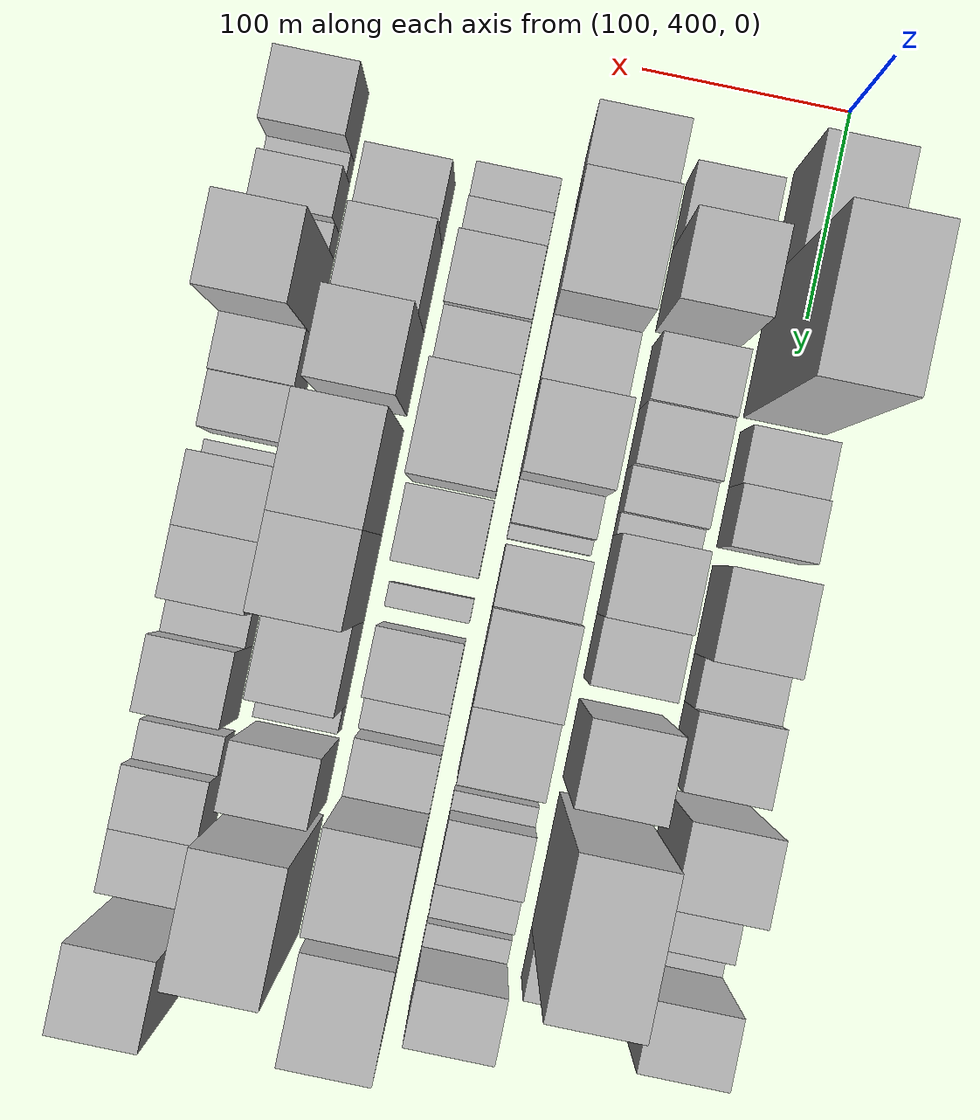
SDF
<sdf version="1.6">
 <world name="default">
  <model name="building_33">
   <static>1</static>
   <pose>100.0000 458.7951 0 0.000000 0.000000 0.000000</pose>
   <link name="link">
    <pose>0 0 45.00 0 0 0</pose>
    <collision name="collision"><geometry><box><size>40.0000 51.8007 90.0000</size></box></geometry></collision>
    <visual name="visual">
     <cast_shadows>0</cast_shadows>
     <geometry><box><size>40.0000 51.8007 90.0000</size></box></geometry>
     <material>
      <script>
       <uri>model://HANNAS_wall/materials/scripts</uri>
       <uri>model://HANNAS_wall/materials/textures</uri>
       <name>vrc/HANNAS_wall</name>
      </script>
     </material>
    </visual>
   </link>
  </model>
  <model name="building_34">
   <static>1</static>
   <pose>100.0000 518.2895 0 0.000000 0.000000 0.000000</pose>
   <link name="link">
    <pose>0 0 99.00 0 0 0</pose>
    <collision name="collision"><geometry><box><size>40.0000 67.1880 198.0000</size></box></geometry></collision>
    <visual name="visual">
     <cast_shadows>0</cast_shadows>
     <geometry><box><size>40.0000 67.1880 198.0000</size></box></geometry>
     <material>
      <script>
       <uri>model://HANNAS_wall/materials/scripts</uri>
       <uri>model://HANNAS_wall/materials/textures</uri>
       <name>vrc/HANNAS_wall</name>
      </script>
     </material>
    </visual>
   </link>
  </model>
  <model name="building_35">
   <static>1</static>
   <pose>100.0000 572.3179 0 0.000000 0.000000 0.000000</pose>
   <link name="link">
    <pose>0 0 24.00 0 0 0</pose>
    <collision name="collision"><geometry><box><size>40.0000 26.8688 48.0000</size></box></geometry></collision>
    <visual name="visual">
     <cast_shadows>0</cast_shadows>
     <geometry><box><size>40.0000 26.8688 48.0000</size></box></geometry>
     <material>
      <script>
       <uri>model://HANNAS_wall/materials/scripts</uri>
       <uri>model://HANNAS_wall/materials/textures</uri>
       <name>vrc/HANNAS_wall</name>
      </script>
     </material>
    </visual>
   </link>
  </model>
  <model name="building_36">
   <static>1</static>
   <pose>100.0000 600.1431 0 0.000000 0.000000 0.000000</pose>
   <link name="link">
    <pose>0 0 27.00 0 0 0</pose>
    <collision name="collision"><geometry><box><size>40.0000 28.7815 54.0000</size></box></geometry></collision>
    <visual name="visual">
     <cast_shadows>0</cast_shadows>
     <geometry><box><size>40.0000 28.7815 54.0000</size></box></geometry>
     <material>
      <script>
       <uri>model://HANNAS_wall/materials/scripts</uri>
       <uri>model://HANNAS_wall/materials/textures</uri>
       <name>vrc/HANNAS_wall</name>
      </script>
     </material>
    </visual>
   </link>
  </model>
  <model name="building_37">
   <static>1</static>
   <pose>100.0000 644.5969 0 0.000000 0.000000 0.000000</pose>
   <link name="link">
    <pose>0 0 37.50 0 0 0</pose>
    <collision name="collision"><geometry><box><size>40.0000 42.1262 75.0000</size></box></geometry></collision>
    <visual name="visual">
     <cast_shadows>0</cast_shadows>
     <geometry><box><size>40.0000 42.1262 75.0000</size></box></geometry>
     <material>
      <script>
       <uri>model://HANNAS_wall/materials/scripts</uri>
       <uri>model://HANNAS_wall/materials/textures</uri>
       <name>vrc/HANNAS_wall</name>
      </script>
     </material>
    </visual>
   </link>
  </model>
  <model name="building_38">
   <static>1</static>
   <pose>100.0000 677.2356 0 0.000000 0.000000 0.000000</pose>
   <link name="link">
    <pose>0 0 22.50 0 0 0</pose>
    <collision name="collision"><geometry><box><size>40.0000 23.1513 45.0000</size></box></geometry></collision>
    <visual name="visual">
     <cast_shadows>0</cast_shadows>
     <geometry><box><size>40.0000 23.1513 45.0000</size></box></geometry>
     <material>
      <script>
       <uri>model://HANNAS_wall/materials/scripts</uri>
       <uri>model://HANNAS_wall/materials/textures</uri>
       <name>vrc/HANNAS_wall</name>
      </script>
     </material>
    </visual>
   </link>
  </model>
  <model name="building_39">
   <static>1</static>
   <pose>100.0000 706.8171 0 0.000000 0.000000 0.000000</pose>
   <link name="link">
    <pose>0 0 31.50 0 0 0</pose>
    <collision name="collision"><geometry><box><size>40.0000 36.0117 63.0000</size></box></geometry></collision>
    <visual name="visual">
     <cast_shadows>0</cast_shadows>
     <geometry><box><size>40.0000 36.0117 63.0000</size></box></geometry>
     <material>
      <script>
       <uri>model://HANNAS_wall/materials/scripts</uri>
       <uri>model://HANNAS_wall/materials/textures</uri>
       <name>vrc/HANNAS_wall</name>
      </script>
     </material>
    </visual>
   </link>
  </model>
  <model name="building_40">
   <static>1</static>
   <pose>100.0000 749.5616 0 0.000000 0.000000 0.000000</pose>
   <link name="link">
    <pose>0 0 57.00 0 0 0</pose>
    <collision name="collision"><geometry><box><size>40.0000 37.4773 114.0000</size></box></geometry></collision>
    <visual name="visual">
     <cast_shadows>0</cast_shadows>
     <geometry><box><size>40.0000 37.4773 114.0000</size></box></geometry>
     <material>
      <script>
       <uri>model://HANNAS_wall/materials/scripts</uri>
       <uri>model://HANNAS_wall/materials/textures</uri>
       <name>vrc/HANNAS_wall</name>
      </script>
     </material>
    </visual>
   </link>
  </model>
  <model name="building_41">
   <static>1</static>
   <pose>100.0000 782.4938 0 0.000000 0.000000 0.000000</pose>
   <link name="link">
    <pose>0 0 25.50 0 0 0</pose>
    <collision name="collision"><geometry><box><size>40.0000 28.3869 51.0000</size></box></geometry></collision>
    <visual name="visual">
     <cast_shadows>0</cast_shadows>
     <geometry><box><size>40.0000 28.3869 51.0000</size></box></geometry>
     <material>
      <script>
       <uri>model://HANNAS_wall/materials/scripts</uri>
       <uri>model://HANNAS_wall/materials/textures</uri>
       <name>vrc/HANNAS_wall</name>
      </script>
     </material>
    </visual>
   </link>
  </model>
  <model name="building_42">
   <static>1</static>
   <pose>100.0000 802.5357 0 0.000000 0.000000 0.000000</pose>
   <link name="link">
    <pose>0 0 12.00 0 0 0</pose>
    <collision name="collision"><geometry><box><size>40.0000 11.6971 24.0000</size></box></geometry></collision>
    <visual name="visual">
     <cast_shadows>0</cast_shadows>
     <geometry><box><size>40.0000 11.6971 24.0000</size></box></geometry>
     <material>
      <script>
       <uri>model://HANNAS_wall/materials/scripts</uri>
       <uri>model://HANNAS_wall/materials/textures</uri>
       <name>vrc/HANNAS_wall</name>
      </script>
     </material>
    </visual>
   </link>
  </model>
  <model name="building_43">
   <static>1</static>
   <pose>100.0000 824.1265 0 0.000000 0.000000 0.000000</pose>
   <link name="link">
    <pose>0 0 51.00 0 0 0</pose>
    <collision name="collision"><geometry><box><size>40.0000 31.4844 102.0000</size></box></geometry></collision>
    <visual name="visual">
     <cast_shadows>0</cast_shadows>
     <geometry><box><size>40.0000 31.4844 102.0000</size></box></geometry>
     <material>
      <script>
       <uri>model://HANNAS_wall/materials/scripts</uri>
       <uri>model://HANNAS_wall/materials/textures</uri>
       <name>vrc/HANNAS_wall</name>
      </script>
     </material>
    </visual>
   </link>
  </model>
  <model name="building_79">
   <static>1</static>
   <pose>149.0000 465.1339 0 0.000000 0.000000 0.000000</pose>
   <link name="link">
    <pose>0 0 27.00 0 0 0</pose>
    <collision name="collision"><geometry><box><size>40.0000 32.3079 54.0000</size></box></geometry></collision>
    <visual name="visual">
     <cast_shadows>0</cast_shadows>
     <geometry><box><size>40.0000 32.3079 54.0000</size></box></geometry>
     <material>
      <script>
       <uri>model://HANNAS_wall/materials/scripts</uri>
       <uri>model://HANNAS_wall/materials/textures</uri>
       <name>vrc/HANNAS_wall</name>
      </script>
     </material>
    </visual>
   </link>
  </model>
  <model name="building_80">
   <static>1</static>
   <pose>149.0000 500.9837 0 0.000000 0.000000 0.000000</pose>
   <link name="link">
    <pose>0 0 57.00 0 0 0</pose>
    <collision name="collision"><geometry><box><size>40.0000 39.3915 114.0000</size></box></geometry></collision>
    <visual name="visual">
     <cast_shadows>0</cast_shadows>
     <geometry><box><size>40.0000 39.3915 114.0000</size></box></geometry>
     <material>
      <script>
       <uri>model://HANNAS_wall/materials/scripts</uri>
       <uri>model://HANNAS_wall/materials/textures</uri>
       <name>vrc/HANNAS_wall</name>
      </script>
     </material>
    </visual>
   </link>
  </model>
  <model name="building_81">
   <static>1</static>
   <pose>149.0000 543.0132 0 0.000000 0.000000 0.000000</pose>
   <link name="link">
    <pose>0 0 30.00 0 0 0</pose>
    <collision name="collision"><geometry><box><size>40.0000 30.6675 60.0000</size></box></geometry></collision>
    <visual name="visual">
     <cast_shadows>0</cast_shadows>
     <geometry><box><size>40.0000 30.6675 60.0000</size></box></geometry>
     <material>
      <script>
       <uri>model://HANNAS_wall/materials/scripts</uri>
       <uri>model://HANNAS_wall/materials/textures</uri>
       <name>vrc/HANNAS_wall</name>
      </script>
     </material>
    </visual>
   </link>
  </model>
  <model name="building_82">
   <static>1</static>
   <pose>149.0000 572.6626 0 0.000000 0.000000 0.000000</pose>
   <link name="link">
    <pose>0 0 27.00 0 0 0</pose>
    <collision name="collision"><geometry><box><size>40.0000 28.6314 54.0000</size></box></geometry></collision>
    <visual name="visual">
     <cast_shadows>0</cast_shadows>
     <geometry><box><size>40.0000 28.6314 54.0000</size></box></geometry>
     <material>
      <script>
       <uri>model://HANNAS_wall/materials/scripts</uri>
       <uri>model://HANNAS_wall/materials/textures</uri>
       <name>vrc/HANNAS_wall</name>
      </script>
     </material>
    </visual>
   </link>
  </model>
  <model name="building_83">
   <static>1</static>
   <pose>149.0000 597.7232 0 0.000000 0.000000 0.000000</pose>
   <link name="link">
    <pose>0 0 19.50 0 0 0</pose>
    <collision name="collision"><geometry><box><size>40.0000 21.4896 39.0000</size></box></geometry></collision>
    <visual name="visual">
     <cast_shadows>0</cast_shadows>
     <geometry><box><size>40.0000 21.4896 39.0000</size></box></geometry>
     <material>
      <script>
       <uri>model://HANNAS_wall/materials/scripts</uri>
       <uri>model://HANNAS_wall/materials/textures</uri>
       <name>vrc/HANNAS_wall</name>
      </script>
     </material>
    </visual>
   </link>
  </model>
  <model name="building_84">
   <static>1</static>
   <pose>149.0000 613.7117 0 0.000000 0.000000 0.000000</pose>
   <link name="link">
    <pose>0 0 12.00 0 0 0</pose>
    <collision name="collision"><geometry><box><size>40.0000 10.4873 24.0000</size></box></geometry></collision>
    <visual name="visual">
     <cast_shadows>0</cast_shadows>
     <geometry><box><size>40.0000 10.4873 24.0000</size></box></geometry>
     <material>
      <script>
       <uri>model://HANNAS_wall/materials/scripts</uri>
       <uri>model://HANNAS_wall/materials/textures</uri>
       <name>vrc/HANNAS_wall</name>
      </script>
     </material>
    </visual>
   </link>
  </model>
  <model name="building_85">
   <static>1</static>
   <pose>149.0000 637.7912 0 0.000000 0.000000 0.000000</pose>
   <link name="link">
    <pose>0 0 33.00 0 0 0</pose>
    <collision name="collision"><geometry><box><size>40.0000 37.6717 66.0000</size></box></geometry></collision>
    <visual name="visual">
     <cast_shadows>0</cast_shadows>
     <geometry><box><size>40.0000 37.6717 66.0000</size></box></geometry>
     <material>
      <script>
       <uri>model://HANNAS_wall/materials/scripts</uri>
       <uri>model://HANNAS_wall/materials/textures</uri>
       <name>vrc/HANNAS_wall</name>
      </script>
     </material>
    </visual>
   </link>
  </model>
  <model name="building_86">
   <static>1</static>
   <pose>149.0000 672.0620 0 0.000000 0.000000 0.000000</pose>
   <link name="link">
    <pose>0 0 28.50 0 0 0</pose>
    <collision name="collision"><geometry><box><size>40.0000 30.8700 57.0000</size></box></geometry></collision>
    <visual name="visual">
     <cast_shadows>0</cast_shadows>
     <geometry><box><size>40.0000 30.8700 57.0000</size></box></geometry>
     <material>
      <script>
       <uri>model://HANNAS_wall/materials/scripts</uri>
       <uri>model://HANNAS_wall/materials/textures</uri>
       <name>vrc/HANNAS_wall</name>
      </script>
     </material>
    </visual>
   </link>
  </model>
  <model name="building_87">
   <static>1</static>
   <pose>149.0000 716.5715 0 0.000000 0.000000 0.000000</pose>
   <link name="link">
    <pose>0 0 57.00 0 0 0</pose>
    <collision name="collision"><geometry><box><size>40.0000 38.1490 114.0000</size></box></geometry></collision>
    <visual name="visual">
     <cast_shadows>0</cast_shadows>
     <geometry><box><size>40.0000 38.1490 114.0000</size></box></geometry>
     <material>
      <script>
       <uri>model://HANNAS_wall/materials/scripts</uri>
       <uri>model://HANNAS_wall/materials/textures</uri>
       <name>vrc/HANNAS_wall</name>
      </script>
     </material>
    </visual>
   </link>
  </model>
  <model name="building_88">
   <static>1</static>
   <pose>149.0000 775.2570 0 0.000000 0.000000 0.000000</pose>
   <link name="link">
    <pose>0 0 93.00 0 0 0</pose>
    <collision name="collision"><geometry><box><size>40.0000 65.2220 186.0000</size></box></geometry></collision>
    <visual name="visual">
     <cast_shadows>0</cast_shadows>
     <geometry><box><size>40.0000 65.2220 186.0000</size></box></geometry>
     <material>
      <script>
       <uri>model://HANNAS_wall/materials/scripts</uri>
       <uri>model://HANNAS_wall/materials/textures</uri>
       <name>vrc/HANNAS_wall</name>
      </script>
     </material>
    </visual>
   </link>
  </model>
  <model name="building_89">
   <static>1</static>
   <pose>149.0000 819.9639 0 0.000000 0.000000 0.000000</pose>
   <link name="link">
    <pose>0 0 24.00 0 0 0</pose>
    <collision name="collision"><geometry><box><size>40.0000 24.1918 48.0000</size></box></geometry></collision>
    <visual name="visual">
     <cast_shadows>0</cast_shadows>
     <geometry><box><size>40.0000 24.1918 48.0000</size></box></geometry>
     <material>
      <script>
       <uri>model://HANNAS_wall/materials/scripts</uri>
       <uri>model://HANNAS_wall/materials/textures</uri>
       <name>vrc/HANNAS_wall</name>
      </script>
     </material>
    </visual>
   </link>
  </model>
  <model name="building_126">
   <static>1</static>
   <pose>198.0000 461.3686 0 0.000000 0.000000 0.000000</pose>
   <link name="link">
    <pose>0 0 52.50 0 0 0</pose>
    <collision name="collision"><geometry><box><size>40.0000 33.6509 105.0000</size></box></geometry></collision>
    <visual name="visual">
     <cast_shadows>0</cast_shadows>
     <geometry><box><size>40.0000 33.6509 105.0000</size></box></geometry>
     <material>
      <script>
       <uri>model://HANNAS_wall/materials/scripts</uri>
       <uri>model://HANNAS_wall/materials/textures</uri>
       <name>vrc/HANNAS_wall</name>
      </script>
     </material>
    </visual>
   </link>
  </model>
  <model name="building_127">
   <static>1</static>
   <pose>198.0000 504.0935 0 0.000000 0.000000 0.000000</pose>
   <link name="link">
    <pose>0 0 66.00 0 0 0</pose>
    <collision name="collision"><geometry><box><size>40.0000 51.7989 132.0000</size></box></geometry></collision>
    <visual name="visual">
     <cast_shadows>0</cast_shadows>
     <geometry><box><size>40.0000 51.7989 132.0000</size></box></geometry>
     <material>
      <script>
       <uri>model://HANNAS_wall/materials/scripts</uri>
       <uri>model://HANNAS_wall/materials/textures</uri>
       <name>vrc/HANNAS_wall</name>
      </script>
     </material>
    </visual>
   </link>
  </model>
  <model name="building_128">
   <static>1</static>
   <pose>198.0000 547.0537 0 0.000000 0.000000 0.000000</pose>
   <link name="link">
    <pose>0 0 28.50 0 0 0</pose>
    <collision name="collision"><geometry><box><size>40.0000 34.1214 57.0000</size></box></geometry></collision>
    <visual name="visual">
     <cast_shadows>0</cast_shadows>
     <geometry><box><size>40.0000 34.1214 57.0000</size></box></geometry>
     <material>
      <script>
       <uri>model://HANNAS_wall/materials/scripts</uri>
       <uri>model://HANNAS_wall/materials/textures</uri>
       <name>vrc/HANNAS_wall</name>
      </script>
     </material>
    </visual>
   </link>
  </model>
  <model name="building_129">
   <static>1</static>
   <pose>198.0000 583.8266 0 0.000000 0.000000 0.000000</pose>
   <link name="link">
    <pose>0 0 54.00 0 0 0</pose>
    <collision name="collision"><geometry><box><size>40.0000 39.4245 108.0000</size></box></geometry></collision>
    <visual name="visual">
     <cast_shadows>0</cast_shadows>
     <geometry><box><size>40.0000 39.4245 108.0000</size></box></geometry>
     <material>
      <script>
       <uri>model://HANNAS_wall/materials/scripts</uri>
       <uri>model://HANNAS_wall/materials/textures</uri>
       <name>vrc/HANNAS_wall</name>
      </script>
     </material>
    </visual>
   </link>
  </model>
  <model name="building_130">
   <static>1</static>
   <pose>198.0000 613.5827 0 0.000000 0.000000 0.000000</pose>
   <link name="link">
    <pose>0 0 18.00 0 0 0</pose>
    <collision name="collision"><geometry><box><size>40.0000 20.0877 36.0000</size></box></geometry></collision>
    <visual name="visual">
     <cast_shadows>0</cast_shadows>
     <geometry><box><size>40.0000 20.0877 36.0000</size></box></geometry>
     <material>
      <script>
       <uri>model://HANNAS_wall/materials/scripts</uri>
       <uri>model://HANNAS_wall/materials/textures</uri>
       <name>vrc/HANNAS_wall</name>
      </script>
     </material>
    </visual>
   </link>
  </model>
  <model name="building_131">
   <static>1</static>
   <pose>198.0000 627.2752 0 0.000000 0.000000 0.000000</pose>
   <link name="link">
    <pose>0 0 7.50 0 0 0</pose>
    <collision name="collision"><geometry><box><size>40.0000 7.2973 15.0000</size></box></geometry></collision>
    <visual name="visual">
     <cast_shadows>0</cast_shadows>
     <geometry><box><size>40.0000 7.2973 15.0000</size></box></geometry>
     <material>
      <script>
       <uri>model://HANNAS_wall/materials/scripts</uri>
       <uri>model://HANNAS_wall/materials/textures</uri>
       <name>vrc/HANNAS_wall</name>
      </script>
     </material>
    </visual>
   </link>
  </model>
  <model name="building_132">
   <static>1</static>
   <pose>198.0000 648.0827 0 0.000000 0.000000 0.000000</pose>
   <link name="link">
    <pose>0 0 27.00 0 0 0</pose>
    <collision name="collision"><geometry><box><size>40.0000 28.3178 54.0000</size></box></geometry></collision>
    <visual name="visual">
     <cast_shadows>0</cast_shadows>
     <geometry><box><size>40.0000 28.3178 54.0000</size></box></geometry>
     <material>
      <script>
       <uri>model://HANNAS_wall/materials/scripts</uri>
       <uri>model://HANNAS_wall/materials/textures</uri>
       <name>vrc/HANNAS_wall</name>
      </script>
     </material>
    </visual>
   </link>
  </model>
  <model name="building_133">
   <static>1</static>
   <pose>198.0000 683.8855 0 0.000000 0.000000 0.000000</pose>
   <link name="link">
    <pose>0 0 40.50 0 0 0</pose>
    <collision name="collision"><geometry><box><size>40.0000 43.2876 81.0000</size></box></geometry></collision>
    <visual name="visual">
     <cast_shadows>0</cast_shadows>
     <geometry><box><size>40.0000 43.2876 81.0000</size></box></geometry>
     <material>
      <script>
       <uri>model://HANNAS_wall/materials/scripts</uri>
       <uri>model://HANNAS_wall/materials/textures</uri>
       <name>vrc/HANNAS_wall</name>
      </script>
     </material>
    </visual>
   </link>
  </model>
  <model name="building_134">
   <static>1</static>
   <pose>198.0000 723.5889 0 0.000000 0.000000 0.000000</pose>
   <link name="link">
    <pose>0 0 33.00 0 0 0</pose>
    <collision name="collision"><geometry><box><size>40.0000 36.1193 66.0000</size></box></geometry></collision>
    <visual name="visual">
     <cast_shadows>0</cast_shadows>
     <geometry><box><size>40.0000 36.1193 66.0000</size></box></geometry>
     <material>
      <script>
       <uri>model://HANNAS_wall/materials/scripts</uri>
       <uri>model://HANNAS_wall/materials/textures</uri>
       <name>vrc/HANNAS_wall</name>
      </script>
     </material>
    </visual>
   </link>
  </model>
  <model name="building_135">
   <static>1</static>
   <pose>198.0000 754.2590 0 0.000000 0.000000 0.000000</pose>
   <link name="link">
    <pose>0 0 10.50 0 0 0</pose>
    <collision name="collision"><geometry><box><size>40.0000 9.2209 21.0000</size></box></geometry></collision>
    <visual name="visual">
     <cast_shadows>0</cast_shadows>
     <geometry><box><size>40.0000 9.2209 21.0000</size></box></geometry>
     <material>
      <script>
       <uri>model://HANNAS_wall/materials/scripts</uri>
       <uri>model://HANNAS_wall/materials/textures</uri>
       <name>vrc/HANNAS_wall</name>
      </script>
     </material>
    </visual>
   </link>
  </model>
  <model name="building_136">
   <static>1</static>
   <pose>198.0000 773.5123 0 0.000000 0.000000 0.000000</pose>
   <link name="link">
    <pose>0 0 27.00 0 0 0</pose>
    <collision name="collision"><geometry><box><size>40.0000 29.2857 54.0000</size></box></geometry></collision>
    <visual name="visual">
     <cast_shadows>0</cast_shadows>
     <geometry><box><size>40.0000 29.2857 54.0000</size></box></geometry>
     <material>
      <script>
       <uri>model://HANNAS_wall/materials/scripts</uri>
       <uri>model://HANNAS_wall/materials/textures</uri>
       <name>vrc/HANNAS_wall</name>
      </script>
     </material>
    </visual>
   </link>
  </model>
  <model name="building_137">
   <static>1</static>
   <pose>198.0000 797.2959 0 0.000000 0.000000 0.000000</pose>
   <link name="link">
    <pose>0 0 18.00 0 0 0</pose>
    <collision name="collision"><geometry><box><size>40.0000 18.2816 36.0000</size></box></geometry></collision>
    <visual name="visual">
     <cast_shadows>0</cast_shadows>
     <geometry><box><size>40.0000 18.2816 36.0000</size></box></geometry>
     <material>
      <script>
       <uri>model://HANNAS_wall/materials/scripts</uri>
       <uri>model://HANNAS_wall/materials/textures</uri>
       <name>vrc/HANNAS_wall</name>
      </script>
     </material>
    </visual>
   </link>
  </model>
  <model name="building_138">
   <static>1</static>
   <pose>198.0000 816.9575 0 0.000000 0.000000 0.000000</pose>
   <link name="link">
    <pose>0 0 12.00 0 0 0</pose>
    <collision name="collision"><geometry><box><size>40.0000 11.0415 24.0000</size></box></geometry></collision>
    <visual name="visual">
     <cast_shadows>0</cast_shadows>
     <geometry><box><size>40.0000 11.0415 24.0000</size></box></geometry>
     <material>
      <script>
       <uri>model://HANNAS_wall/materials/scripts</uri>
       <uri>model://HANNAS_wall/materials/textures</uri>
       <name>vrc/HANNAS_wall</name>
      </script>
     </material>
    </visual>
   </link>
  </model>
  <model name="building_139">
   <static>1</static>
   <pose>198.0000 837.0732 0 0.000000 0.000000 0.000000</pose>
   <link name="link">
    <pose>0 0 46.50 0 0 0</pose>
    <collision name="collision"><geometry><box><size>40.0000 29.1898 93.0000</size></box></geometry></collision>
    <visual name="visual">
     <cast_shadows>0</cast_shadows>
     <geometry><box><size>40.0000 29.1898 93.0000</size></box></geometry>
     <material>
      <script>
       <uri>model://HANNAS_wall/materials/scripts</uri>
       <uri>model://HANNAS_wall/materials/textures</uri>
       <name>vrc/HANNAS_wall</name>
      </script>
     </material>
    </visual>
   </link>
  </model>
  <model name="building_180">
   <static>1</static>
   <pose>247.0000 473.3639 0 0.000000 0.000000 0.000000</pose>
   <link name="link">
    <pose>0 0 15.00 0 0 0</pose>
    <collision name="collision"><geometry><box><size>40.0000 17.4265 30.0000</size></box></geometry></collision>
    <visual name="visual">
     <cast_shadows>0</cast_shadows>
     <geometry><box><size>40.0000 17.4265 30.0000</size></box></geometry>
     <material>
      <script>
       <uri>model://HANNAS_wall/materials/scripts</uri>
       <uri>model://HANNAS_wall/materials/textures</uri>
       <name>vrc/HANNAS_wall</name>
      </script>
     </material>
    </visual>
   </link>
  </model>
  <model name="building_181">
   <static>1</static>
   <pose>247.0000 492.0597 0 0.000000 0.000000 0.000000</pose>
   <link name="link">
    <pose>0 0 18.00 0 0 0</pose>
    <collision name="collision"><geometry><box><size>40.0000 19.9653 36.0000</size></box></geometry></collision>
    <visual name="visual">
     <cast_shadows>0</cast_shadows>
     <geometry><box><size>40.0000 19.9653 36.0000</size></box></geometry>
     <material>
      <script>
       <uri>model://HANNAS_wall/materials/scripts</uri>
       <uri>model://HANNAS_wall/materials/textures</uri>
       <name>vrc/HANNAS_wall</name>
      </script>
     </material>
    </visual>
   </link>
  </model>
  <model name="building_182">
   <static>1</static>
   <pose>247.0000 518.5913 0 0.000000 0.000000 0.000000</pose>
   <link name="link">
    <pose>0 0 31.50 0 0 0</pose>
    <collision name="collision"><geometry><box><size>40.0000 33.0978 63.0000</size></box></geometry></collision>
    <visual name="visual">
     <cast_shadows>0</cast_shadows>
     <geometry><box><size>40.0000 33.0978 63.0000</size></box></geometry>
     <material>
      <script>
       <uri>model://HANNAS_wall/materials/scripts</uri>
       <uri>model://HANNAS_wall/materials/textures</uri>
       <name>vrc/HANNAS_wall</name>
      </script>
     </material>
    </visual>
   </link>
  </model>
  <model name="building_183">
   <static>1</static>
   <pose>247.0000 548.8405 0 0.000000 0.000000 0.000000</pose>
   <link name="link">
    <pose>0 0 27.00 0 0 0</pose>
    <collision name="collision"><geometry><box><size>40.0000 27.4005 54.0000</size></box></geometry></collision>
    <visual name="visual">
     <cast_shadows>0</cast_shadows>
     <geometry><box><size>40.0000 27.4005 54.0000</size></box></geometry>
     <material>
      <script>
       <uri>model://HANNAS_wall/materials/scripts</uri>
       <uri>model://HANNAS_wall/materials/textures</uri>
       <name>vrc/HANNAS_wall</name>
      </script>
     </material>
    </visual>
   </link>
  </model>
  <model name="building_184">
   <static>1</static>
   <pose>247.0000 588.0120 0 0.000000 0.000000 0.000000</pose>
   <link name="link">
    <pose>0 0 43.50 0 0 0</pose>
    <collision name="collision"><geometry><box><size>40.0000 50.9426 87.0000</size></box></geometry></collision>
    <visual name="visual">
     <cast_shadows>0</cast_shadows>
     <geometry><box><size>40.0000 50.9426 87.0000</size></box></geometry>
     <material>
      <script>
       <uri>model://HANNAS_wall/materials/scripts</uri>
       <uri>model://HANNAS_wall/materials/textures</uri>
       <name>vrc/HANNAS_wall</name>
      </script>
     </material>
    </visual>
   </link>
  </model>
  <model name="building_185">
   <static>1</static>
   <pose>247.0000 634.0078 0 0.000000 0.000000 0.000000</pose>
   <link name="link">
    <pose>0 0 30.00 0 0 0</pose>
    <collision name="collision"><geometry><box><size>40.0000 35.0490 60.0000</size></box></geometry></collision>
    <visual name="visual">
     <cast_shadows>0</cast_shadows>
     <geometry><box><size>40.0000 35.0490 60.0000</size></box></geometry>
     <material>
      <script>
       <uri>model://HANNAS_wall/materials/scripts</uri>
       <uri>model://HANNAS_wall/materials/textures</uri>
       <name>vrc/HANNAS_wall</name>
      </script>
     </material>
    </visual>
   </link>
  </model>
  <model name="building_186">
   <static>1</static>
   <pose>247.0000 667.2780 0 0.000000 0.000000 0.000000</pose>
   <link name="link">
    <pose>0 0 12.00 0 0 0</pose>
    <collision name="collision"><geometry><box><size>40.0000 11.4912 24.0000</size></box></geometry></collision>
    <visual name="visual">
     <cast_shadows>0</cast_shadows>
     <geometry><box><size>40.0000 11.4912 24.0000</size></box></geometry>
     <material>
      <script>
       <uri>model://HANNAS_wall/materials/scripts</uri>
       <uri>model://HANNAS_wall/materials/textures</uri>
       <name>vrc/HANNAS_wall</name>
      </script>
     </material>
    </visual>
   </link>
  </model>
  <model name="building_187">
   <static>1</static>
   <pose>247.0000 697.0978 0 0.000000 0.000000 0.000000</pose>
   <link name="link">
    <pose>0 0 30.00 0 0 0</pose>
    <collision name="collision"><geometry><box><size>40.0000 32.1485 60.0000</size></box></geometry></collision>
    <visual name="visual">
     <cast_shadows>0</cast_shadows>
     <geometry><box><size>40.0000 32.1485 60.0000</size></box></geometry>
     <material>
      <script>
       <uri>model://HANNAS_wall/materials/scripts</uri>
       <uri>model://HANNAS_wall/materials/textures</uri>
       <name>vrc/HANNAS_wall</name>
      </script>
     </material>
    </visual>
   </link>
  </model>
  <model name="building_188">
   <static>1</static>
   <pose>247.0000 721.5182 0 0.000000 0.000000 0.000000</pose>
   <link name="link">
    <pose>0 0 15.00 0 0 0</pose>
    <collision name="collision"><geometry><box><size>40.0000 16.6921 30.0000</size></box></geometry></collision>
    <visual name="visual">
     <cast_shadows>0</cast_shadows>
     <geometry><box><size>40.0000 16.6921 30.0000</size></box></geometry>
     <material>
      <script>
       <uri>model://HANNAS_wall/materials/scripts</uri>
       <uri>model://HANNAS_wall/materials/textures</uri>
       <name>vrc/HANNAS_wall</name>
      </script>
     </material>
    </visual>
   </link>
  </model>
  <model name="building_189">
   <static>1</static>
   <pose>247.0000 746.2112 0 0.000000 0.000000 0.000000</pose>
   <link name="link">
    <pose>0 0 22.50 0 0 0</pose>
    <collision name="collision"><geometry><box><size>40.0000 26.6940 45.0000</size></box></geometry></collision>
    <visual name="visual">
     <cast_shadows>0</cast_shadows>
     <geometry><box><size>40.0000 26.6940 45.0000</size></box></geometry>
     <material>
      <script>
       <uri>model://HANNAS_wall/materials/scripts</uri>
       <uri>model://HANNAS_wall/materials/textures</uri>
       <name>vrc/HANNAS_wall</name>
      </script>
     </material>
    </visual>
   </link>
  </model>
  <model name="building_190">
   <static>1</static>
   <pose>247.0000 781.7191 0 0.000000 0.000000 0.000000</pose>
   <link name="link">
    <pose>0 0 72.00 0 0 0</pose>
    <collision name="collision"><geometry><box><size>40.0000 44.3219 144.0000</size></box></geometry></collision>
    <visual name="visual">
     <cast_shadows>0</cast_shadows>
     <geometry><box><size>40.0000 44.3219 144.0000</size></box></geometry>
     <material>
      <script>
       <uri>model://HANNAS_wall/materials/scripts</uri>
       <uri>model://HANNAS_wall/materials/textures</uri>
       <name>vrc/HANNAS_wall</name>
      </script>
     </material>
    </visual>
   </link>
  </model>
  <model name="building_191">
   <static>1</static>
   <pose>247.0000 837.7290 0 0.000000 0.000000 0.000000</pose>
   <link name="link">
    <pose>0 0 63.00 0 0 0</pose>
    <collision name="collision"><geometry><box><size>40.0000 47.6977 126.0000</size></box></geometry></collision>
    <visual name="visual">
     <cast_shadows>0</cast_shadows>
     <geometry><box><size>40.0000 47.6977 126.0000</size></box></geometry>
     <material>
      <script>
       <uri>model://HANNAS_wall/materials/scripts</uri>
       <uri>model://HANNAS_wall/materials/textures</uri>
       <name>vrc/HANNAS_wall</name>
      </script>
     </material>
    </visual>
   </link>
  </model>
  <model name="building_225">
   <static>1</static>
   <pose>296.0000 487.0941 0 0.000000 0.000000 0.000000</pose>
   <link name="link">
    <pose>0 0 28.50 0 0 0</pose>
    <collision name="collision"><geometry><box><size>40.0000 30.2638 57.0000</size></box></geometry></collision>
    <visual name="visual">
     <cast_shadows>0</cast_shadows>
     <geometry><box><size>40.0000 30.2638 57.0000</size></box></geometry>
     <material>
      <script>
       <uri>model://HANNAS_wall/materials/scripts</uri>
       <uri>model://HANNAS_wall/materials/textures</uri>
       <name>vrc/HANNAS_wall</name>
      </script>
     </material>
    </visual>
   </link>
  </model>
  <model name="building_226">
   <static>1</static>
   <pose>296.0000 523.1327 0 0.000000 0.000000 0.000000</pose>
   <link name="link">
    <pose>0 0 37.50 0 0 0</pose>
    <collision name="collision"><geometry><box><size>40.0000 41.8132 75.0000</size></box></geometry></collision>
    <visual name="visual">
     <cast_shadows>0</cast_shadows>
     <geometry><box><size>40.0000 41.8132 75.0000</size></box></geometry>
     <material>
      <script>
       <uri>model://HANNAS_wall/materials/scripts</uri>
       <uri>model://HANNAS_wall/materials/textures</uri>
       <name>vrc/HANNAS_wall</name>
      </script>
     </material>
    </visual>
   </link>
  </model>
  <model name="building_227">
   <static>1</static>
   <pose>296.0000 563.9287 0 0.000000 0.000000 0.000000</pose>
   <link name="link">
    <pose>0 0 55.50 0 0 0</pose>
    <collision name="collision"><geometry><box><size>40.0000 39.7788 111.0000</size></box></geometry></collision>
    <visual name="visual">
     <cast_shadows>0</cast_shadows>
     <geometry><box><size>40.0000 39.7788 111.0000</size></box></geometry>
     <material>
      <script>
       <uri>model://HANNAS_wall/materials/scripts</uri>
       <uri>model://HANNAS_wall/materials/textures</uri>
       <name>vrc/HANNAS_wall</name>
      </script>
     </material>
    </visual>
   </link>
  </model>
  <model name="building_228">
   <static>1</static>
   <pose>296.0000 616.0899 0 0.000000 0.000000 0.000000</pose>
   <link name="link">
    <pose>0 0 69.00 0 0 0</pose>
    <collision name="collision"><geometry><box><size>40.0000 50.5437 138.0000</size></box></geometry></collision>
    <visual name="visual">
     <cast_shadows>0</cast_shadows>
     <geometry><box><size>40.0000 50.5437 138.0000</size></box></geometry>
     <material>
      <script>
       <uri>model://HANNAS_wall/materials/scripts</uri>
       <uri>model://HANNAS_wall/materials/textures</uri>
       <name>vrc/HANNAS_wall</name>
      </script>
     </material>
    </visual>
   </link>
  </model>
  <model name="building_229">
   <static>1</static>
   <pose>296.0000 662.1992 0 0.000000 0.000000 0.000000</pose>
   <link name="link">
    <pose>0 0 69.00 0 0 0</pose>
    <collision name="collision"><geometry><box><size>40.0000 41.6749 138.0000</size></box></geometry></collision>
    <visual name="visual">
     <cast_shadows>0</cast_shadows>
     <geometry><box><size>40.0000 41.6749 138.0000</size></box></geometry>
     <material>
      <script>
       <uri>model://HANNAS_wall/materials/scripts</uri>
       <uri>model://HANNAS_wall/materials/textures</uri>
       <name>vrc/HANNAS_wall</name>
      </script>
     </material>
    </visual>
   </link>
  </model>
  <model name="building_230">
   <static>1</static>
   <pose>296.0000 703.1786 0 0.000000 0.000000 0.000000</pose>
   <link name="link">
    <pose>0 0 37.50 0 0 0</pose>
    <collision name="collision"><geometry><box><size>40.0000 40.2837 75.0000</size></box></geometry></collision>
    <visual name="visual">
     <cast_shadows>0</cast_shadows>
     <geometry><box><size>40.0000 40.2837 75.0000</size></box></geometry>
     <material>
      <script>
       <uri>model://HANNAS_wall/materials/scripts</uri>
       <uri>model://HANNAS_wall/materials/textures</uri>
       <name>vrc/HANNAS_wall</name>
      </script>
     </material>
    </visual>
   </link>
  </model>
  <model name="building_231">
   <static>1</static>
   <pose>296.0000 729.2589 0 0.000000 0.000000 0.000000</pose>
   <link name="link">
    <pose>0 0 12.00 0 0 0</pose>
    <collision name="collision"><geometry><box><size>40.0000 11.8770 24.0000</size></box></geometry></collision>
    <visual name="visual">
     <cast_shadows>0</cast_shadows>
     <geometry><box><size>40.0000 11.8770 24.0000</size></box></geometry>
     <material>
      <script>
       <uri>model://HANNAS_wall/materials/scripts</uri>
       <uri>model://HANNAS_wall/materials/textures</uri>
       <name>vrc/HANNAS_wall</name>
      </script>
     </material>
    </visual>
   </link>
  </model>
  <model name="building_232">
   <static>1</static>
   <pose>296.0000 754.6557 0 0.000000 0.000000 0.000000</pose>
   <link name="link">
    <pose>0 0 48.00 0 0 0</pose>
    <collision name="collision"><geometry><box><size>40.0000 30.9165 96.0000</size></box></geometry></collision>
    <visual name="visual">
     <cast_shadows>0</cast_shadows>
     <geometry><box><size>40.0000 30.9165 96.0000</size></box></geometry>
     <material>
      <script>
       <uri>model://HANNAS_wall/materials/scripts</uri>
       <uri>model://HANNAS_wall/materials/textures</uri>
       <name>vrc/HANNAS_wall</name>
      </script>
     </material>
    </visual>
   </link>
  </model>
  <model name="building_233">
   <static>1</static>
   <pose>296.0000 804.7228 0 0.000000 0.000000 0.000000</pose>
   <link name="link">
    <pose>0 0 78.00 0 0 0</pose>
    <collision name="collision"><geometry><box><size>40.0000 57.2177 156.0000</size></box></geometry></collision>
    <visual name="visual">
     <cast_shadows>0</cast_shadows>
     <geometry><box><size>40.0000 57.2177 156.0000</size></box></geometry>
     <material>
      <script>
       <uri>model://HANNAS_wall/materials/scripts</uri>
       <uri>model://HANNAS_wall/materials/textures</uri>
       <name>vrc/HANNAS_wall</name>
      </script>
     </material>
    </visual>
   </link>
  </model>
  <model name="building_279">
   <static>1</static>
   <pose>345.0000 454.4884 0 0.000000 0.000000 0.000000</pose>
   <link name="link">
    <pose>0 0 28.50 0 0 0</pose>
    <collision name="collision"><geometry><box><size>40.0000 33.6792 57.0000</size></box></geometry></collision>
    <visual name="visual">
     <cast_shadows>0</cast_shadows>
     <geometry><box><size>40.0000 33.6792 57.0000</size></box></geometry>
     <material>
      <script>
       <uri>model://HANNAS_wall/materials/scripts</uri>
       <uri>model://HANNAS_wall/materials/textures</uri>
       <name>vrc/HANNAS_wall</name>
      </script>
     </material>
    </visual>
   </link>
  </model>
  <model name="building_280">
   <static>1</static>
   <pose>345.0000 476.5622 0 0.000000 0.000000 0.000000</pose>
   <link name="link">
    <pose>0 0 10.50 0 0 0</pose>
    <collision name="collision"><geometry><box><size>40.0000 10.4683 21.0000</size></box></geometry></collision>
    <visual name="visual">
     <cast_shadows>0</cast_shadows>
     <geometry><box><size>40.0000 10.4683 21.0000</size></box></geometry>
     <material>
      <script>
       <uri>model://HANNAS_wall/materials/scripts</uri>
       <uri>model://HANNAS_wall/materials/textures</uri>
       <name>vrc/HANNAS_wall</name>
      </script>
     </material>
    </visual>
   </link>
  </model>
  <model name="building_281">
   <static>1</static>
   <pose>345.0000 493.7554 0 0.000000 0.000000 0.000000</pose>
   <link name="link">
    <pose>0 0 21.00 0 0 0</pose>
    <collision name="collision"><geometry><box><size>40.0000 23.9181 42.0000</size></box></geometry></collision>
    <visual name="visual">
     <cast_shadows>0</cast_shadows>
     <geometry><box><size>40.0000 23.9181 42.0000</size></box></geometry>
     <material>
      <script>
       <uri>model://HANNAS_wall/materials/scripts</uri>
       <uri>model://HANNAS_wall/materials/textures</uri>
       <name>vrc/HANNAS_wall</name>
      </script>
     </material>
    </visual>
   </link>
  </model>
  <model name="building_282">
   <static>1</static>
   <pose>345.0000 511.9334 0 0.000000 0.000000 0.000000</pose>
   <link name="link">
    <pose>0 0 13.50 0 0 0</pose>
    <collision name="collision"><geometry><box><size>40.0000 12.4380 27.0000</size></box></geometry></collision>
    <visual name="visual">
     <cast_shadows>0</cast_shadows>
     <geometry><box><size>40.0000 12.4380 27.0000</size></box></geometry>
     <material>
      <script>
       <uri>model://HANNAS_wall/materials/scripts</uri>
       <uri>model://HANNAS_wall/materials/textures</uri>
       <name>vrc/HANNAS_wall</name>
      </script>
     </material>
    </visual>
   </link>
  </model>
  <model name="building_283">
   <static>1</static>
   <pose>345.0000 538.1688 0 0.000000 0.000000 0.000000</pose>
   <link name="link">
    <pose>0 0 66.00 0 0 0</pose>
    <collision name="collision"><geometry><box><size>40.0000 40.0328 132.0000</size></box></geometry></collision>
    <visual name="visual">
     <cast_shadows>0</cast_shadows>
     <geometry><box><size>40.0000 40.0328 132.0000</size></box></geometry>
     <material>
      <script>
       <uri>model://HANNAS_wall/materials/scripts</uri>
       <uri>model://HANNAS_wall/materials/textures</uri>
       <name>vrc/HANNAS_wall</name>
      </script>
     </material>
    </visual>
   </link>
  </model>
  <model name="building_284">
   <static>1</static>
   <pose>345.0000 571.3074 0 0.000000 0.000000 0.000000</pose>
   <link name="link">
    <pose>0 0 25.50 0 0 0</pose>
    <collision name="collision"><geometry><box><size>40.0000 26.2443 51.0000</size></box></geometry></collision>
    <visual name="visual">
     <cast_shadows>0</cast_shadows>
     <geometry><box><size>40.0000 26.2443 51.0000</size></box></geometry>
     <material>
      <script>
       <uri>model://HANNAS_wall/materials/scripts</uri>
       <uri>model://HANNAS_wall/materials/textures</uri>
       <name>vrc/HANNAS_wall</name>
      </script>
     </material>
    </visual>
   </link>
  </model>
  <model name="building_285">
   <static>1</static>
   <pose>345.0000 597.4159 0 0.000000 0.000000 0.000000</pose>
   <link name="link">
    <pose>0 0 24.00 0 0 0</pose>
    <collision name="collision"><geometry><box><size>40.0000 25.9728 48.0000</size></box></geometry></collision>
    <visual name="visual">
     <cast_shadows>0</cast_shadows>
     <geometry><box><size>40.0000 25.9728 48.0000</size></box></geometry>
     <material>
      <script>
       <uri>model://HANNAS_wall/materials/scripts</uri>
       <uri>model://HANNAS_wall/materials/textures</uri>
       <name>vrc/HANNAS_wall</name>
      </script>
     </material>
    </visual>
   </link>
  </model>
  <model name="building_286">
   <static>1</static>
   <pose>345.0000 618.0749 0 0.000000 0.000000 0.000000</pose>
   <link name="link">
    <pose>0 0 9.00 0 0 0</pose>
    <collision name="collision"><geometry><box><size>40.0000 7.3453 18.0000</size></box></geometry></collision>
    <visual name="visual">
     <cast_shadows>0</cast_shadows>
     <geometry><box><size>40.0000 7.3453 18.0000</size></box></geometry>
     <material>
      <script>
       <uri>model://HANNAS_wall/materials/scripts</uri>
       <uri>model://HANNAS_wall/materials/textures</uri>
       <name>vrc/HANNAS_wall</name>
      </script>
     </material>
    </visual>
   </link>
  </model>
  <model name="building_287">
   <static>1</static>
   <pose>345.0000 638.8129 0 0.000000 0.000000 0.000000</pose>
   <link name="link">
    <pose>0 0 30.00 0 0 0</pose>
    <collision name="collision"><geometry><box><size>40.0000 34.1306 60.0000</size></box></geometry></collision>
    <visual name="visual">
     <cast_shadows>0</cast_shadows>
     <geometry><box><size>40.0000 34.1306 60.0000</size></box></geometry>
     <material>
      <script>
       <uri>model://HANNAS_wall/materials/scripts</uri>
       <uri>model://HANNAS_wall/materials/textures</uri>
       <name>vrc/HANNAS_wall</name>
      </script>
     </material>
    </visual>
   </link>
  </model>
  <model name="building_288">
   <static>1</static>
   <pose>345.0000 672.2740 0 0.000000 0.000000 0.000000</pose>
   <link name="link">
    <pose>0 0 30.00 0 0 0</pose>
    <collision name="collision"><geometry><box><size>40.0000 32.7916 60.0000</size></box></geometry></collision>
    <visual name="visual">
     <cast_shadows>0</cast_shadows>
     <geometry><box><size>40.0000 32.7916 60.0000</size></box></geometry>
     <material>
      <script>
       <uri>model://HANNAS_wall/materials/scripts</uri>
       <uri>model://HANNAS_wall/materials/textures</uri>
       <name>vrc/HANNAS_wall</name>
      </script>
     </material>
    </visual>
   </link>
  </model>
  <model name="building_289">
   <static>1</static>
   <pose>345.0000 696.8588 0 0.000000 0.000000 0.000000</pose>
   <link name="link">
    <pose>0 0 15.00 0 0 0</pose>
    <collision name="collision"><geometry><box><size>40.0000 16.3779 30.0000</size></box></geometry></collision>
    <visual name="visual">
     <cast_shadows>0</cast_shadows>
     <geometry><box><size>40.0000 16.3779 30.0000</size></box></geometry>
     <material>
      <script>
       <uri>model://HANNAS_wall/materials/scripts</uri>
       <uri>model://HANNAS_wall/materials/textures</uri>
       <name>vrc/HANNAS_wall</name>
      </script>
     </material>
    </visual>
   </link>
  </model>
  <model name="building_290">
   <static>1</static>
   <pose>345.0000 722.4378 0 0.000000 0.000000 0.000000</pose>
   <link name="link">
    <pose>0 0 31.50 0 0 0</pose>
    <collision name="collision"><geometry><box><size>40.0000 34.7802 63.0000</size></box></geometry></collision>
    <visual name="visual">
     <cast_shadows>0</cast_shadows>
     <geometry><box><size>40.0000 34.7802 63.0000</size></box></geometry>
     <material>
      <script>
       <uri>model://HANNAS_wall/materials/scripts</uri>
       <uri>model://HANNAS_wall/materials/textures</uri>
       <name>vrc/HANNAS_wall</name>
      </script>
     </material>
    </visual>
   </link>
  </model>
  <model name="building_291">
   <static>1</static>
   <pose>345.0000 754.9585 0 0.000000 0.000000 0.000000</pose>
   <link name="link">
    <pose>0 0 16.50 0 0 0</pose>
    <collision name="collision"><geometry><box><size>40.0000 18.2612 33.0000</size></box></geometry></collision>
    <visual name="visual">
     <cast_shadows>0</cast_shadows>
     <geometry><box><size>40.0000 18.2612 33.0000</size></box></geometry>
     <material>
      <script>
       <uri>model://HANNAS_wall/materials/scripts</uri>
       <uri>model://HANNAS_wall/materials/textures</uri>
       <name>vrc/HANNAS_wall</name>
      </script>
     </material>
    </visual>
   </link>
  </model>
  <model name="building_292">
   <static>1</static>
   <pose>345.0000 778.6489 0 0.000000 0.000000 0.000000</pose>
   <link name="link">
    <pose>0 0 28.50 0 0 0</pose>
    <collision name="collision"><geometry><box><size>40.0000 29.1197 57.0000</size></box></geometry></collision>
    <visual name="visual">
     <cast_shadows>0</cast_shadows>
     <geometry><box><size>40.0000 29.1197 57.0000</size></box></geometry>
     <material>
      <script>
       <uri>model://HANNAS_wall/materials/scripts</uri>
       <uri>model://HANNAS_wall/materials/textures</uri>
       <name>vrc/HANNAS_wall</name>
      </script>
     </material>
    </visual>
   </link>
  </model>
  <model name="building_293">
   <static>1</static>
   <pose>345.0000 807.5564 0 0.000000 0.000000 0.000000</pose>
   <link name="link">
    <pose>0 0 28.50 0 0 0</pose>
    <collision name="collision"><geometry><box><size>40.0000 28.6953 57.0000</size></box></geometry></collision>
    <visual name="visual">
     <cast_shadows>0</cast_shadows>
     <geometry><box><size>40.0000 28.6953 57.0000</size></box></geometry>
     <material>
      <script>
       <uri>model://HANNAS_wall/materials/scripts</uri>
       <uri>model://HANNAS_wall/materials/textures</uri>
       <name>vrc/HANNAS_wall</name>
      </script>
     </material>
    </visual>
   </link>
  </model>
  <model name="building_294">
   <static>1</static>
   <pose>345.0000 824.9792 0 0.000000 0.000000 0.000000</pose>
   <link name="link">
    <pose>0 0 7.50 0 0 0</pose>
    <collision name="collision"><geometry><box><size>40.0000 6.1503 15.0000</size></box></geometry></collision>
    <visual name="visual">
     <cast_shadows>0</cast_shadows>
     <geometry><box><size>40.0000 6.1503 15.0000</size></box></geometry>
     <material>
      <script>
       <uri>model://HANNAS_wall/materials/scripts</uri>
       <uri>model://HANNAS_wall/materials/textures</uri>
       <name>vrc/HANNAS_wall</name>
      </script>
     </material>
    </visual>
   </link>
  </model>
  <model name="building_295">
   <static>1</static>
   <pose>345.0000 853.5853 0 0.000000 0.000000 0.000000</pose>
   <link name="link">
    <pose>0 0 54.00 0 0 0</pose>
    <collision name="collision"><geometry><box><size>40.0000 39.0617 108.0000</size></box></geometry></collision>
    <visual name="visual">
     <cast_shadows>0</cast_shadows>
     <geometry><box><size>40.0000 39.0617 108.0000</size></box></geometry>
     <material>
      <script>
       <uri>model://HANNAS_wall/materials/scripts</uri>
       <uri>model://HANNAS_wall/materials/textures</uri>
       <name>vrc/HANNAS_wall</name>
      </script>
     </material>
    </visual>
   </link>
  </model>
 </world>
</sdf>
